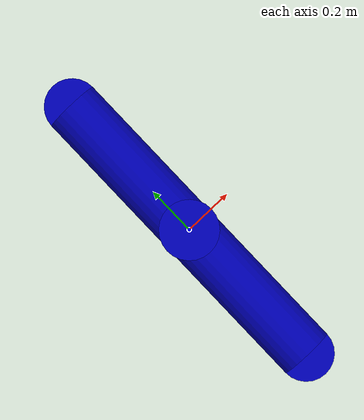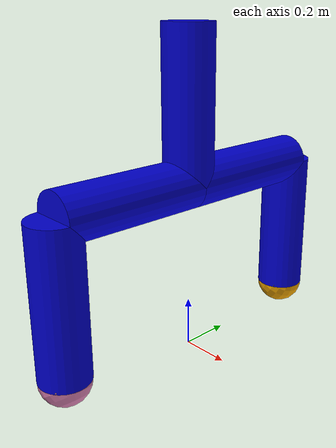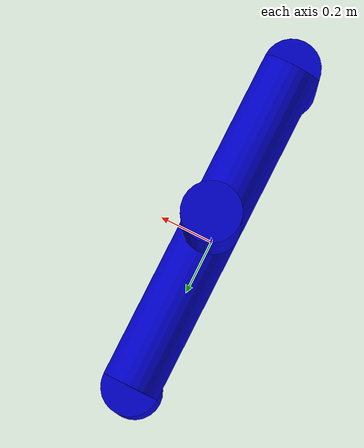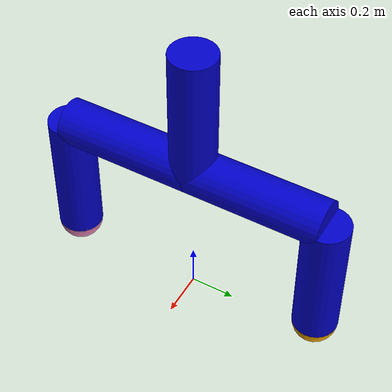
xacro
<?xml version="1.0"?>
<robot name="my_robot_final" xmlns:xacro="http://www.ros.org/wiki/xacro">

<!-- Constants for robot description -->
<xacro:property name="friction" value="2.5" />
<xacro:property name="type_of_joint" value="continuous" />

<!--  Gazebo tags -->
<gazebo reference="link1">
	<self_collide>0</self_collide>
	<material>Gazebo/Orange</material>
</gazebo>

<gazebo reference="link2">
	<self_collide>0</self_collide>
	<material>Gazebo/Blue</material>
</gazebo>

<gazebo reference="link3">
	<self_collide>0</self_collide>
	<material>Gazebo/Red</material>
</gazebo>

<gazebo reference="link4">
	<mu1>1.0</mu1>
        <mu2>1.0</mu2>
	<self_collide>0</self_collide>
	<material>Gazebo/Black</material>
</gazebo>

<gazebo reference="link5">
	<mu1>1.0</mu1>
        <mu2>1.0</mu2>
    	<self_collide>0</self_collide>
	<material>Gazebo/Black</material>
</gazebo>

<!-- Controlling Joints -->
<gazebo>
    <plugin name="gazebo_ros_control" filename="libgazebo_ros_control.so">
      <robotNamespace>/simple_model</robotNamespace>
    </plugin>
  </gazebo>

<transmission name="first_to_second_trans">
    <type>transmission_interface/SimpleTransmission</type>
    <actuator name="motor1">
      <mechanicalReduction>1</mechanicalReduction>
    </actuator>
    <joint name="joint1">
      <hardwareInterface>EffortJointInterface</hardwareInterface>
    </joint>
  </transmission>

<transmission name="second_to_third_trans">
    <type>transmission_interface/SimpleTransmission</type>
    <actuator name="motor2">
      <mechanicalReduction>1</mechanicalReduction>
    </actuator>
    <joint name="joint2">
      <hardwareInterface>EffortJointInterface</hardwareInterface>
    </joint>
  </transmission>

<transmission name="second_to_third_trans">
    <type>transmission_interface/SimpleTransmission</type>
    <actuator name="motor3">
      <mechanicalReduction>1</mechanicalReduction>
    </actuator>
    <joint name="joint3">
      <hardwareInterface>EffortJointInterface</hardwareInterface>
    </joint>
  </transmission>

<transmission name="second_to_third_trans">
    <type>transmission_interface/SimpleTransmission</type>
    <actuator name="motor4">
      <mechanicalReduction>1</mechanicalReduction>
    </actuator>
    <joint name="joint4">
      <hardwareInterface>EffortJointInterface</hardwareInterface>
    </joint>
  </transmission>

<link name="world"/>

<!-- virtual link used to perform the transitional movement along z-axis (note that it has no visual tag) -->
<link name="virtual">
    <collision>
	<origin rpy="0 0 0" xyz="0 0 1"/>
      <geometry>
        <cylinder length="0.6" radius="0.1"/>
      </geometry>
    </collision>
    <inertial>
	<origin xyz="0 0 1" rpy="0 0 0"/>
      <mass value="10"/>
      <inertia ixx="0.0" ixy="0.0" ixz="0.0" iyy="1.2" iyz="0.0" izz="1.2"/>
    </inertial>
  </link>

<joint name="z_axis_joint" type="prismatic">
        <origin xyz="0 0 0" rpy="0.0 0.0 0.0"/>
        <parent link="world" />
        <child link="virtual" />
        <axis xyz="0 0 1" />
        <limit effort="10000" lower="-1000" upper="1000" velocity="1000" />
</joint>

<!-- the basic link of the robot -->
  <link name="link1">
     <visual>
	<origin rpy="0 0 0" xyz="0 0 1"/>
      <geometry>
        <cylinder length="0.6" radius="0.1"/>
      </geometry>
      <material name="blue">
        <color rgba="0 0 .8 1"/>
      </material>
    </visual>
    <collision>
	<origin rpy="0 0 0" xyz="0 0 1"/>
      <geometry>
        <cylinder length="0.6" radius="0.1"/>
      </geometry>
    </collision>
    <inertial>
	<origin xyz="0 0 1" rpy="0 0 0"/>
      <mass value="10"/>
      <inertia ixx="0.0" ixy="0.0" ixz="0.0" iyy="1.2" iyz="0.0" izz="1.2"/>
    </inertial>
  </link>

<!--  2nd link of the robot  -->
<link name="link2">
    <visual>
	<origin rpy="0 1.5707 1.5707" xyz="0 0.3 0"/>
      <geometry>
        <cylinder length="0.6" radius="0.1"/>
      </geometry>
      <material name="blue">
        <color rgba="0 0 .8 1"/>
      </material>
    </visual>
    <collision>
	<origin rpy="0 1.5707 1.5707" xyz="0 0.3 0"/>
      <geometry>
        <cylinder length="0.6" radius="0.1"/>
      </geometry>
    </collision>
    <inertial>
	<origin xyz="0 0.3 0" rpy="0 0 0"/>
      <mass value="10"/>
      <inertia ixx="0.0" ixy="0.0" ixz="0.0" iyy="1.2" iyz="0.0" izz="1.2"/>
    </inertial>
  </link>

<!-- 3rd link of the robot -->
<link name="link3">
    <visual>
	<origin rpy="0 1.5707 1.5707" xyz="0 -0.3 0"/>
      <geometry>
        <cylinder length="0.6" radius="0.1"/>
      </geometry>
      <material name="blue">
        <color rgba="0 0 .8 1"/>
      </material>
    </visual>
    <collision>
	<origin rpy="0 1.5707 1.5707" xyz="0 -0.3 0"/>
      <geometry>
        <cylinder length="0.6" radius="0.1"/>
      </geometry>
    </collision>
    <inertial>
	<origin xyz="0 -0.3 0" rpy="0 0 0"/>
      <mass value="10"/>
      <inertia ixx="0.0" ixy="0.0" ixz="0.0" iyy="1.2" iyz="0.0" izz="1.2"/>
    </inertial>
  </link>

<!-- 4th link of the robot and the sphere attached to it -->
<link name="link4">
    <visual>
	<origin rpy="0 0 0" xyz="0 0 -0.3"/>
      <geometry>
        <cylinder length="0.6" radius="0.1"/>
      </geometry>
      <material name="blue">
        <color rgba="0 0 .8 1"/>
      </material>
    </visual>
    <collision>
	<origin rpy="0 0 0" xyz="0 0 -0.3"/>
      <geometry>
        <cylinder length="0.6" radius="0.1"/>
      </geometry>
    </collision>
    <inertial>
	<origin xyz="0 0 -0.3" rpy="0 0 0"/>
      <mass value="10"/>
      <inertia ixx="0.0" ixy="0.0" ixz="0.0" iyy="1.2" iyz="0.0" izz="1.2"/>
    </inertial>
  </link>

  <link name="sphere1">
    <visual>
	<origin rpy="0 -0.6 0" xyz="0 0 0"/>
      <geometry>
        <sphere radius="0.1"/>
      </geometry>
    </visual>
    <collision>
	<origin rpy="0 -0.6 0" xyz="0 0 0"/>
      <geometry>
        <sphere radius="0.1"/>
      </geometry>
    </collision>
    <inertial>
	<origin xyz="0 0 0" rpy="0 0 0"/>
      <mass value="10"/>
      <inertia ixx="0.04" ixy="0.0" ixz="0.0" iyy="0.04" iyz="0.0" izz="0.04"/>
    </inertial>
  </link>

<joint name="sphere_to_link4" type="fixed">
    <parent link="link4"/>
    <child link="sphere1"/>
    <origin xyz="0 0 -0.6"/>
</joint>

<!-- 5th link of the robot and the sphere attached to it -->
<link name="link5">
    <visual>
	<origin rpy="0 0 0" xyz="0 0 -0.3"/>
      <geometry>
        <cylinder length="0.6" radius="0.1"/>
      </geometry>
      <material name="blue">
        <color rgba="0 0 .8 1"/>
      </material>
    </visual>
    <collision>
	<origin rpy="0 0 0" xyz="0 0 -0.3"/>
      <geometry>
        <cylinder length="0.6" radius="0.1"/>
      </geometry>
    </collision>
    <inertial>
	<origin xyz="0 0 -0.3" rpy="0 0 0"/>
      <mass value="10"/>
      <inertia ixx="0.0" ixy="0.0" ixz="0.0" iyy="1.2" iyz="0.0" izz="1.2"/>
    </inertial>
  </link>

  <link name="sphere2">
    <visual>
	<origin rpy="0 0.6 0" xyz="0 0 0"/>
      <geometry>
        <sphere radius="0.1"/>
      </geometry>
    </visual>
    <collision>
	<origin rpy="0 0.6 0" xyz="0 0 0"/>
      <geometry>
        <sphere radius="0.1"/>
      </geometry>
    </collision>
    <inertial>
	<origin xyz="0 0 0" rpy="0 0 0"/>
      <mass value="10"/>
      <inertia ixx="0.04" ixy="0.0" ixz="0.0" iyy="0.04" iyz="0.0" izz="0.04"/>
    </inertial>
  </link>

<joint name="sphere_to_link5" type="fixed">
    <parent link="link5"/>
    <child link="sphere2"/>
    <origin xyz="0 0 -0.6"/>
</joint>

<!-- joint that performs the planar movement of the base link (link1) of the robot, which mantains the movement of the robot inside yz plane -->
    <joint name="zy_planar_joint" type="prismatic">
        <origin xyz="0 0 0" rpy="0.0 0.0 0.0"/>
        <parent link="virtual" />
        <child link="link1" />
        <axis xyz="0 1 0" />
        <limit effort="10000" lower="-1000" upper="1000" velocity="1000" />
    </joint>

<!-- other joints of the robot -->
<joint name="joint1" type="${type_of_joint}">
    <parent link="link1"/>
    <child link="link2"/>
    <origin xyz="0 0 0.7"/>
    <axis rpy="0 0 0" xyz="1 0 0"/>
    <limit lower="-3.1416" upper="3.1416" effort="10000" velocity="1000"/>
    <dynamics friction="${friction}"/>
  </joint>

<joint name="joint2" type="${type_of_joint}">
    <parent link="link1"/>
    <child link="link3"/>
    <origin xyz="0 0 0.7"/>
    <axis rpy="0 0 0" xyz="1 0 0"/>
    <limit lower="-3.1416" upper="3.1416" effort="10000" velocity="1000"/>
    <dynamics friction="${friction}"/>
  </joint>

<joint name="joint3" type="${type_of_joint}">
    <parent link="link3"/>
    <child link="link4"/>
    <origin xyz="0 -0.6 0"/>
    <axis rpy="0 0 0" xyz="1 0 0"/>
    <limit lower="-3.1416" upper="3.1416" effort="10000" velocity="1000"/>
    <dynamics friction="${friction}"/>
  </joint>

<joint name="joint4" type="${type_of_joint}">
    <parent link="link2"/>
    <child link="link5"/>
    <origin xyz="0 0.6 0"/>
    <axis rpy="0 0 0" xyz="1 0 0"/>
    <limit lower="-3.1416" upper="3.1416" effort="10000" velocity="1000"/>
     <dynamics friction="${friction}"/>
  </joint>

</robot>
